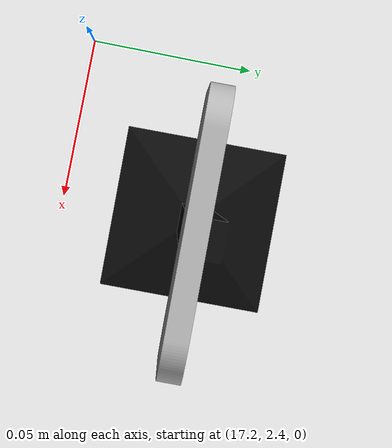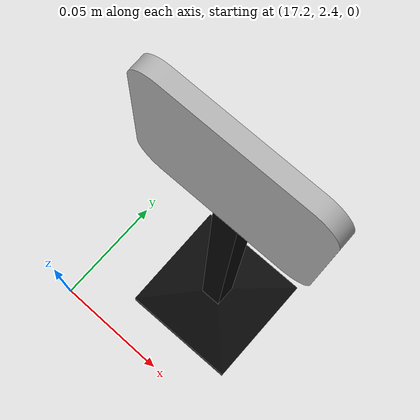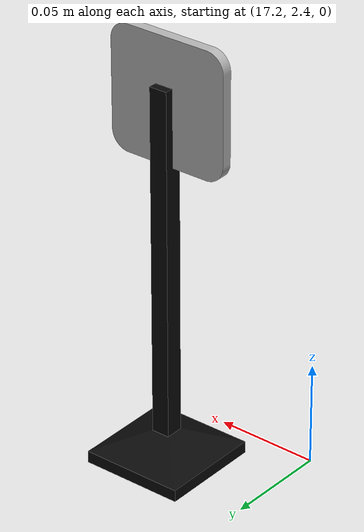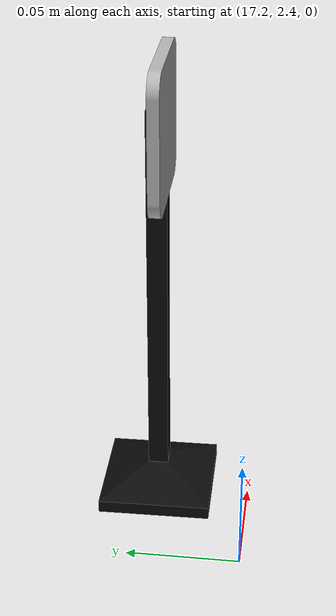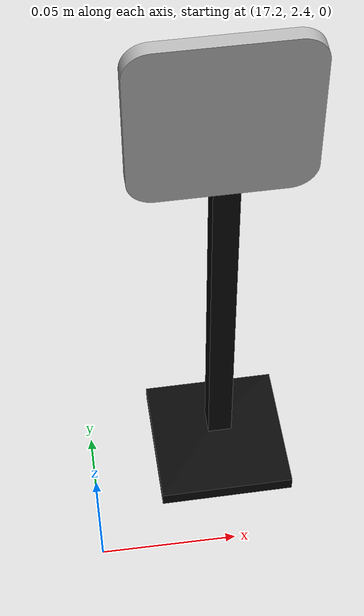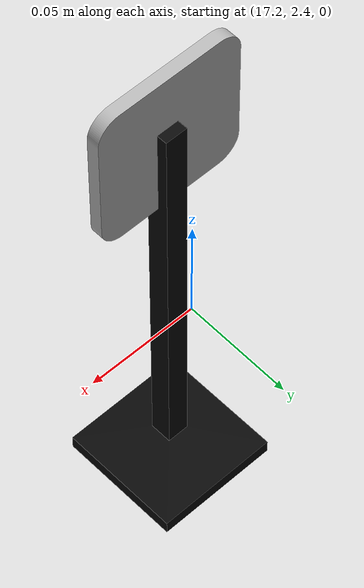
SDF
<sdf version="1.7">
 <world name="bfmc_official">
  <model name="crosswalk_sign">
   <static>1</static>
   <link name="sign_leg">
    <inertial>
     <mass>0.5</mass>
     <inertia>
      <ixx>0.166667</ixx>
      <ixy>0</ixy>
      <ixz>0</ixz>
      <iyy>0.166667</iyy>
      <iyz>0</iyz>
      <izz>0.166667</izz>
     </inertia>
     <pose>0 0 -0.078998 0 -0 0</pose>
    </inertial>
    <pose>0.002193 -0.000682 -0.07606 0 -0 0</pose>
    <self_collide>1</self_collide>
    <enable_wind>1</enable_wind>
    <visual name="visual">
     <geometry><mesh><uri>model://subassembly/meshes/sign_leg.dae</uri><scale>1 1 1</scale></mesh></geometry>
    </visual>
    <collision name="collision">
     <geometry><mesh><uri>model://subassembly/meshes/sign_leg.dae</uri><scale>1 1 1</scale></mesh></geometry>
     <surface>
      <friction>
       <ode><mu>0.46</mu><mu2>1</mu2><fdir1>0 0 0</fdir1><slip1>0</slip1><slip2>0</slip2></ode>
       <torsional>
        <coefficient>1</coefficient>
        <patch_radius>0</patch_radius>
        <surface_radius>0</surface_radius>
        <use_patch_radius>1</use_patch_radius>
        <ode><slip>0</slip></ode>
       </torsional>
      </friction>
      <bounce><restitution_coefficient>0</restitution_coefficient><threshold>1e+06</threshold></bounce>
      <contact>
       <collide_without_contact>0</collide_without_contact>
       <collide_without_contact_bitmask>1</collide_without_contact_bitmask>
       <collide_bitmask>1</collide_bitmask>
       <ode>
        <soft_cfm>0</soft_cfm>
        <soft_erp>0.2</soft_erp>
        <kp>1e+13</kp>
        <kd>1</kd>
        <max_vel>0.01</max_vel>
        <min_depth>0</min_depth>
       </ode>
       <bullet>
        <split_impulse>1</split_impulse>
        <split_impulse_penetration_threshold>-0.01</split_impulse_penetration_threshold>
        <soft_cfm>0</soft_cfm>
        <soft_erp>0.2</soft_erp>
        <kp>1e+13</kp>
        <kd>1</kd>
       </bullet>
      </contact>
     </surface>
    </collision>
   </link>
   <link name="rectangular_support">
    <inertial>
     <mass>0.022</mass>
     <inertia>
      <ixx>0.166667</ixx>
      <ixy>0</ixy>
      <ixz>0</ixz>
      <iyy>0.166667</iyy>
      <iyz>0</iyz>
      <izz>0.166667</izz>
     </inertia>
    </inertial>
    <pose>-0 0.000682 0.09894 0 -0 3.14159</pose>
    <self_collide>1</self_collide>
    <enable_wind>1</enable_wind>
    <visual name="visual">
     <geometry>
      <mesh><uri>model://crosswalk_sign/meshes/pedestrian_sign.dae</uri><scale>10 10 10</scale></mesh>
     </geometry>
     <material>
      <lighting>1</lighting>
      <script>
       <uri>model://crosswalk_sign/materials/scripts</uri>
       <uri>model://crosswalk_sign/materials/textures</uri>
       <name>PEDESTRIAN_SIGN</name>
      </script>
      <shader type="vertex"><normal_map>__default__</normal_map></shader>
      <ambient>0.3 0.3 0.3 1</ambient>
      <diffuse>0.7 0.7 0.7 1</diffuse>
      <specular>0.01 0.01 0.01 1</specular>
      <emissive>0 0 0 1</emissive>
     </material>
    </visual>
    <collision name="collision">
     <geometry>
      <mesh><uri>model://crosswalk_sign/meshes/pedestrian_sign.dae</uri><scale>10 10 10</scale></mesh>
     </geometry>
     <surface>
      <friction>
       <ode><mu>0.46</mu><mu2>1</mu2><fdir1>0 0 0</fdir1><slip1>0</slip1><slip2>0</slip2></ode>
       <torsional>
        <coefficient>1</coefficient>
        <patch_radius>0</patch_radius>
        <surface_radius>0</surface_radius>
        <use_patch_radius>1</use_patch_radius>
        <ode><slip>0</slip></ode>
       </torsional>
      </friction>
      <bounce><restitution_coefficient>0</restitution_coefficient><threshold>1e+06</threshold></bounce>
      <contact>
       <collide_without_contact>0</collide_without_contact>
       <collide_without_contact_bitmask>1</collide_without_contact_bitmask>
       <collide_bitmask>1</collide_bitmask>
       <ode>
        <soft_cfm>0</soft_cfm>
        <soft_erp>0.2</soft_erp>
        <kp>1e+13</kp>
        <kd>1</kd>
        <max_vel>0.01</max_vel>
        <min_depth>0</min_depth>
       </ode>
       <bullet>
        <split_impulse>1</split_impulse>
        <split_impulse_penetration_threshold>-0.01</split_impulse_penetration_threshold>
        <soft_cfm>0</soft_cfm>
        <soft_erp>0.2</soft_erp>
        <kp>1e+13</kp>
        <kd>1</kd>
       </bullet>
      </contact>
     </surface>
    </collision>
   </link>
   <joint name="support_to_leg_joint" type="fixed">
    <parent>link_0</parent>
    <child>link_1</child>
    <physics>
     <ode><limit><cfm>0</cfm><erp>0.2</erp></limit><suspension><cfm>0</cfm><erp>0.2</erp></suspension></ode>
    </physics>
   </joint>
   <static>1</static>
   <pose>17.2486 2.43925 0.081437 0 -0 1.58468</pose>
  </model>
 </world>
</sdf>
